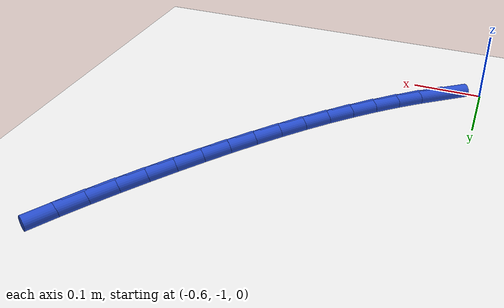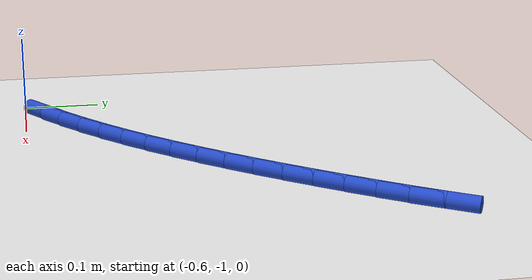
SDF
<sdf version="1.6">
 <world name="default">
  <model name="ground_plane">
   <static>1</static>
   <link name="link">
    <collision name="collision">
     <geometry><plane><normal>0 0 1</normal><size>100 100</size></plane></geometry>
     <surface><friction><ode><mu>100</mu><mu2>50</mu2></ode></friction></surface>
    </collision>
    <visual name="visual">
     <cast_shadows>0</cast_shadows>
     <geometry><plane><normal>0 0 1</normal><size>100 100</size></plane></geometry>
     <material>
      <script><uri>file://media/materials/scripts/gazebo.material</uri><name>Gazebo/WhiteGlow</name></script>
     </material>
    </visual>
   </link>
  </model>
  <model name="line">
   <link name="link_150">
    <pose>-0.545304956954996 -0.97056922649525 0.01 0 1.57 0.6362963434533223</pose>
    <collision name="collision">
     <geometry><cylinder><radius>0.01</radius><length>0.08</length></cylinder></geometry>
    </collision>
    <visual name="visual">
     <material>
      <script><name>Gazebo/Blue</name><uri>file://media/materials/scripts/gazebo.material</uri></script>
     </material>
     <geometry><cylinder><radius>0.01</radius><length>0.08</length></cylinder></geometry>
    </visual>
   </link>
   <link name="link_151">
    <pose>-0.5148846199151668 -0.9480945943371519 0.01 0 1.57 0.6788328337895632</pose>
    <collision name="collision">
     <geometry><cylinder><radius>0.01</radius><length>0.08</length></cylinder></geometry>
    </collision>
    <visual name="visual">
     <material>
      <script><name>Gazebo/Blue</name><uri>file://media/materials/scripts/gazebo.material</uri></script>
     </material>
     <geometry><cylinder><radius>0.01</radius><length>0.08</length></cylinder></geometry>
    </visual>
   </link>
   <link name="link_152">
    <pose>-0.48527338457524966 -0.924206240144333 0.01 0 1.57 0.7179539945570489</pose>
    <collision name="collision">
     <geometry><cylinder><radius>0.01</radius><length>0.08</length></cylinder></geometry>
    </collision>
    <visual name="visual">
     <material>
      <script><name>Gazebo/Blue</name><uri>file://media/materials/scripts/gazebo.material</uri></script>
     </material>
     <geometry><cylinder><radius>0.01</radius><length>0.08</length></cylinder></geometry>
    </visual>
   </link>
   <link name="link_153">
    <pose>-0.4564443877100564 -0.8990254234535289 0.01 0 1.57 0.7537765222160545</pose>
    <collision name="collision">
     <geometry><cylinder><radius>0.01</radius><length>0.08</length></cylinder></geometry>
    </collision>
    <visual name="visual">
     <material>
      <script><name>Gazebo/Blue</name><uri>file://media/materials/scripts/gazebo.material</uri></script>
     </material>
     <geometry><cylinder><radius>0.01</radius><length>0.08</length></cylinder></geometry>
    </visual>
   </link>
   <link name="link_154">
    <pose>-0.4283707660943983 -0.872673403801474 0.01 0 1.57 0.7864366383706507</pose>
    <collision name="collision">
     <geometry><cylinder><radius>0.01</radius><length>0.08</length></cylinder></geometry>
    </collision>
    <visual name="visual">
     <material>
      <script><name>Gazebo/Blue</name><uri>file://media/materials/scripts/gazebo.material</uri></script>
     </material>
     <geometry><cylinder><radius>0.01</radius><length>0.08</length></cylinder></geometry>
    </visual>
   </link>
   <link name="link_155">
    <pose>-0.4010256565030884 -0.8452714407249049 0.01 0 1.57 0.8160790932766432</pose>
    <collision name="collision">
     <geometry><cylinder><radius>0.01</radius><length>0.08</length></cylinder></geometry>
    </collision>
    <visual name="visual">
     <material>
      <script><name>Gazebo/Blue</name><uri>file://media/materials/scripts/gazebo.material</uri></script>
     </material>
     <geometry><cylinder><radius>0.01</radius><length>0.08</length></cylinder></geometry>
    </visual>
   </link>
   <link name="link_156">
    <pose>-0.37438219571093767 -0.8169407937605563 0.01 0 1.57 0.8428486319047584</pose>
    <collision name="collision">
     <geometry><cylinder><radius>0.01</radius><length>0.08</length></cylinder></geometry>
    </collision>
    <visual name="visual">
     <material>
      <script><name>Gazebo/Blue</name><uri>file://media/materials/scripts/gazebo.material</uri></script>
     </material>
     <geometry><cylinder><radius>0.01</radius><length>0.08</length></cylinder></geometry>
    </visual>
   </link>
   <link name="link_157">
    <pose>-0.34841352049275814 -0.7878027224451636 0.01 0 1.57 0.8668835605745462</pose>
    <collision name="collision">
     <geometry><cylinder><radius>0.01</radius><length>0.08</length></cylinder></geometry>
    </collision>
    <visual name="visual">
     <material>
      <script><name>Gazebo/Blue</name><uri>file://media/materials/scripts/gazebo.material</uri></script>
     </material>
     <geometry><cylinder><radius>0.01</radius><length>0.08</length></cylinder></geometry>
    </visual>
   </link>
   <link name="link_158">
    <pose>-0.3230927676233615 -0.7579784863154619 0.01 0 1.57 0.8883109897124304</pose>
    <collision name="collision">
     <geometry><cylinder><radius>0.01</radius><length>0.08</length></cylinder></geometry>
    </collision>
    <visual name="visual">
     <material>
      <script><name>Gazebo/Blue</name><uri>file://media/materials/scripts/gazebo.material</uri></script>
     </material>
     <geometry><cylinder><radius>0.01</radius><length>0.08</length></cylinder></geometry>
    </visual>
   </link>
   <link name="link_159">
    <pose>-0.29839307387755903 -0.7275893449081864 0.01 0 1.57 0.9072433327870384</pose>
    <collision name="collision">
     <geometry><cylinder><radius>0.01</radius><length>0.08</length></cylinder></geometry>
    </collision>
    <visual name="visual">
     <material>
      <script><name>Gazebo/Blue</name><uri>file://media/materials/scripts/gazebo.material</uri></script>
     </material>
     <geometry><cylinder><radius>0.01</radius><length>0.08</length></cylinder></geometry>
    </visual>
   </link>
   <link name="link_160">
    <pose>-0.2742875760301635 -0.6967565577600727 0.01 0 1.57 0.9237756793027718</pose>
    <collision name="collision">
     <geometry><cylinder><radius>0.01</radius><length>0.08</length></cylinder></geometry>
    </collision>
    <visual name="visual">
     <material>
      <script><name>Gazebo/Blue</name><uri>file://media/materials/scripts/gazebo.material</uri></script>
     </material>
     <geometry><cylinder><radius>0.01</radius><length>0.08</length></cylinder></geometry>
    </visual>
   </link>
   <link name="link_161">
    <pose>-0.25074941085598634 -0.6656013844078567 0.01 0 1.57 0.9380029417734905</pose>
    <collision name="collision">
     <geometry><cylinder><radius>0.01</radius><length>0.08</length></cylinder></geometry>
    </collision>
    <visual name="visual">
     <material>
      <script><name>Gazebo/Blue</name><uri>file://media/materials/scripts/gazebo.material</uri></script>
     </material>
     <geometry><cylinder><radius>0.01</radius><length>0.08</length></cylinder></geometry>
    </visual>
   </link>
   <link name="link_162">
    <pose>-0.22775216470037216 -0.63424443274996 0.01 0 1.57 0.9518716084494198</pose>
    <collision name="collision">
     <geometry><cylinder><radius>0.01</radius><length>0.08</length></cylinder></geometry>
    </collision>
    <visual name="visual">
     <material>
      <script><name>Gazebo/Blue</name><uri>file://media/materials/scripts/gazebo.material</uri></script>
     </material>
     <geometry><cylinder><radius>0.01</radius><length>0.08</length></cylinder></geometry>
    </visual>
   </link>
   <link name="link_163">
    <pose>-0.20531359608419983 -0.6027422845091236 0.01 0 1.57 0.9688899524596194</pose>
    <collision name="collision">
     <geometry><cylinder><radius>0.01</radius><length>0.08</length></cylinder></geometry>
    </collision>
    <visual name="visual">
     <material>
      <script><name>Gazebo/Blue</name><uri>file://media/materials/scripts/gazebo.material</uri></script>
     </material>
     <geometry><cylinder><radius>0.01</radius><length>0.08</length></cylinder></geometry>
    </visual>
   </link>
   <link name="link_164">
    <pose>-0.1835322383231613 -0.5710344408898442 0.01 0 1.57 0.989475572608992</pose>
    <collision name="collision">
     <geometry><cylinder><radius>0.01</radius><length>0.08</length></cylinder></geometry>
    </collision>
    <visual name="visual">
     <material>
      <script><name>Gazebo/Blue</name><uri>file://media/materials/scripts/gazebo.material</uri></script>
     </material>
     <geometry><cylinder><radius>0.01</radius><length>0.08</length></cylinder></geometry>
    </visual>
   </link>
   <link name="link_165">
    <pose>-0.16251524174314597 -0.5390479130120314 0.01 0 1.57 1.0136635547857813</pose>
    <collision name="collision">
     <geometry><cylinder><radius>0.01</radius><length>0.08</length></cylinder></geometry>
    </collision>
    <visual name="visual">
     <material>
      <script><name>Gazebo/Blue</name><uri>file://media/materials/scripts/gazebo.material</uri></script>
     </material>
     <geometry><cylinder><radius>0.01</radius><length>0.08</length></cylinder></geometry>
    </visual>
   </link>
  </model>
 </world>
</sdf>
